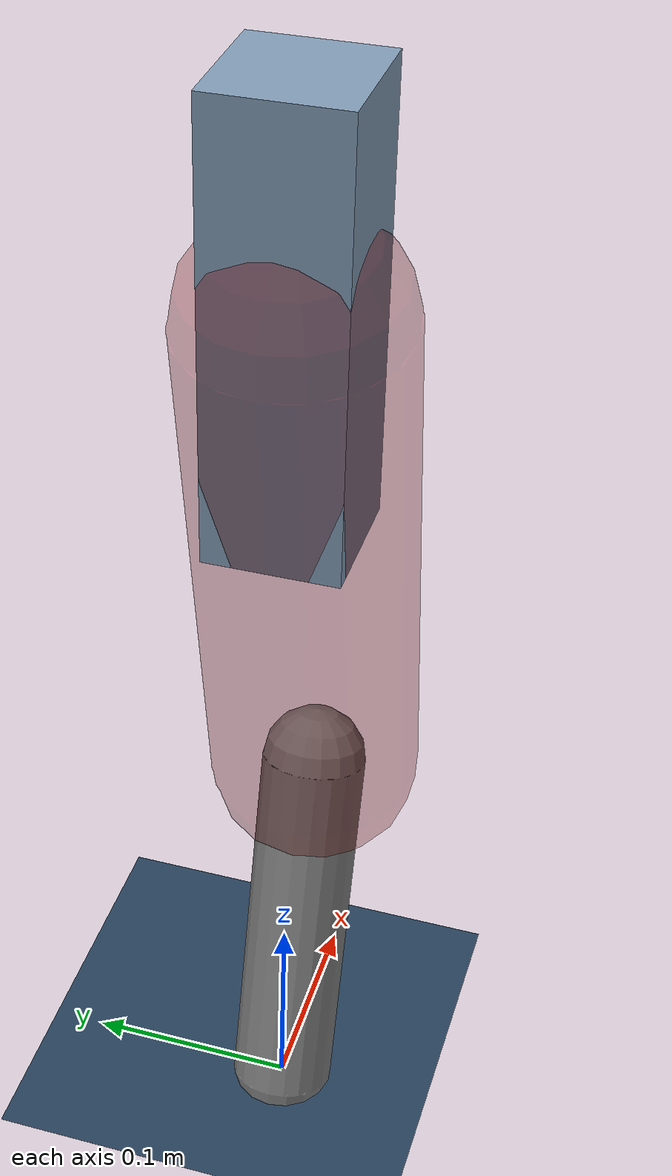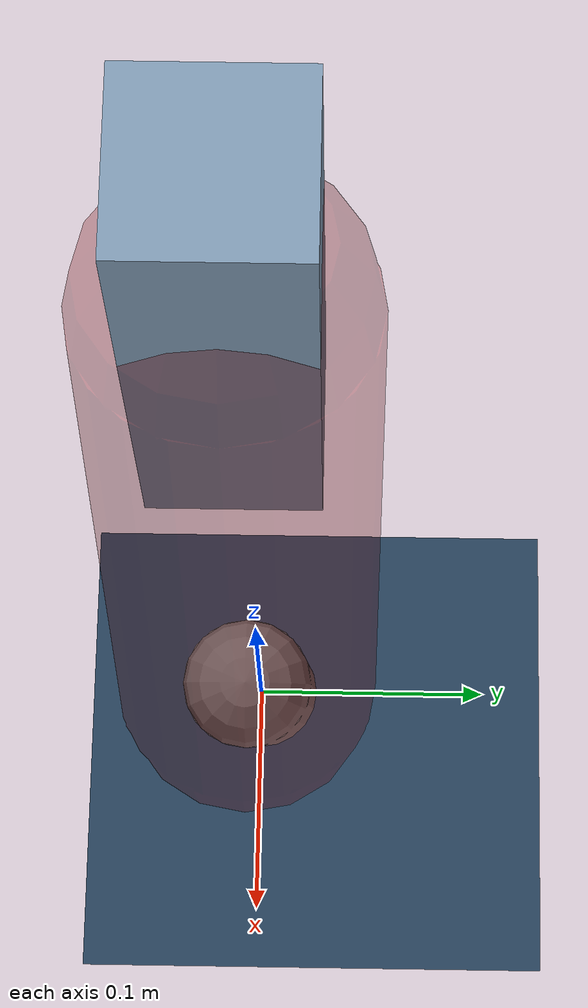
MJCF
<mujoco model="Hopper2D">
	<compiler inertiafromgeom="true" angle="radian" />
	<option timestep="0.001" integrator="implicit" cone="elliptic" solver="Newton" tolerance="1e-10" />

	<default>
		<geom contype="1" conaffinity="1" condim="3" friction="2 0.005 0.0001" solref="0.005 1" />
		<joint limited="true" damping="0.1" />
	</default>

	<asset>
		<texture name="skybox" type="skybox" builtin="gradient" rgb1=".4 .6 .8" rgb2="0 0 0" width="800" height="800" />
		<texture name="grid" type="2d" builtin="checker" rgb1=".1 .2 .3" rgb2=".2 .3 .4" width="300" height="300" mark="edge" markrgb=".2 .3 .4" />
		<material name="ground" texture="grid" texrepeat="1 1" texuniform="true" reflectance="0.1" />
		<material name="leg" rgba="0.5 0.6 0.7 1" />
	</asset>

	<worldbody>

		<geom name="floor" type="plane" size="5 5 0.25" material="ground" />

		<light directional="false" diffuse="0.8 0.8 0.8" specular="0.3 0.3 0.3" pos="0 0 2" dir="0 0 -1" />
		<light mode="targetbodycom" target="base" directional="false" diffuse="0.8 0.8 0.8" specular="0.3 0.3 0.3" pos="0 0 2" dir="0 0 -1" />

		<camera name="fixed" pos="0 -2 1" xyaxes="1 0 0 0 0 1" />
		<camera name="tracking" mode="trackcom" pos="0 -3 1" />

		<body name="root" pos="0 0 0.4368948191156632">
			<joint name="slide_x" type="slide" axis="1 0 0" range="-100 100" />
			<joint name="slide_z" type="slide" axis="0 0 1" range="0 10" />

			<body name="base" pos="0 0 0">
				<geom name="torso" type="box" size="0.03 0.03 0.1" mass="3.136" material="leg" />

				<body name="link1" pos="0 0 0" euler="0 1.3946758258442178 0">
					<joint type="hinge" axis="0 -1 0" pos="0 0 0" name="hinge1" limited="true" range="-3.14 3.14" stiffness="0" damping="0.1" />
					<geom name="thigh" type="capsule" fromto="0 0 0 0.2636855792766545 0 0" size="0.05" rgba="0.5 0 0 0.3" mass="0.8920825061193016" />

					<body name="link2" pos="0.2636855792766545 0 0" euler="0 0.4310473646307971 0">
						<joint type="hinge" axis="0 -1 0" pos="0 0 0" name="hinge2" limited="true" range="-3.14 3.14" stiffness="0" damping="0.1" />
						<geom name="shank" type="capsule" fromto="0 0 0 0.18320923983900872 0 0" size="0.025" mass="0.38666739187120697" />

					</body>
				</body>
			</body>
		</body>
	</worldbody>

	<actuator>
		<motor name="torque1" joint="hinge1" ctrlrange="-123.1269852659746 123.1269852659746" ctrllimited="true" gear="1" />
		<motor name="torque2" joint="hinge2" ctrlrange="-129.80618503704136 129.80618503704136" ctrllimited="true" gear="1" />
	</actuator>
</mujoco>
